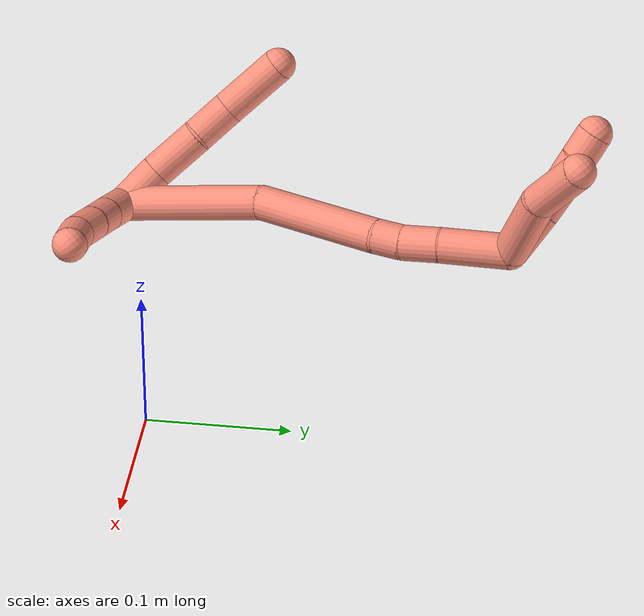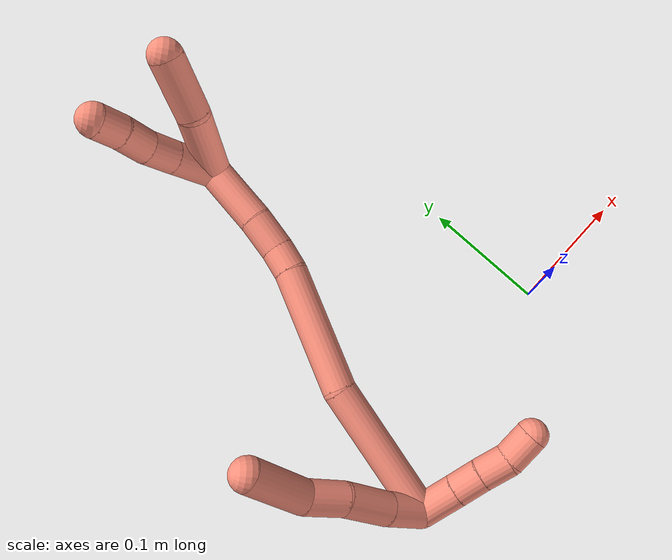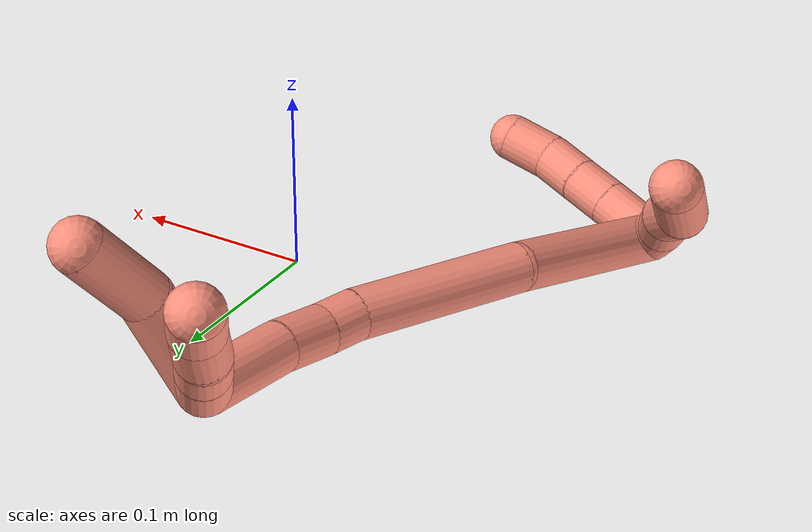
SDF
<sdf version="1.7">
 <world name="default">
  <model name="16">
   <static>0</static>
   <link name="16">
    <collision name="collision-cylinder-e_1_2_8">
     <pose>0.003369 -0.001065 0.015936 0.066722 0.207889 0.006963</pose>
     <geometry><cylinder><radius>0.0125</radius><length>0.032647</length></cylinder></geometry>
     <surface>
      <friction><ode><mu>1.16</mu><mu2>1.16</mu2><slip1>0</slip1><slip2>0</slip2></ode></friction>
      <contact><ode><kp>1e+06</kp><kd>1</kd><max_vel>0</max_vel><min_depth>0.001</min_depth></ode></contact>
     </surface>
    </collision>
    <visual name="visual-cylinder-e_1_2_8">
     <pose>0.003369 -0.001065 0.015936 0.066722 0.207889 0.006963</pose>
     <geometry><cylinder><radius>0.0125</radius><length>0.032647</length></cylinder></geometry>
     <material><ambient>1 0.576471 0.494118 1</ambient></material>
    </visual>
    <collision name="collision-cylinder-e_2_8_9">
     <pose>0.011866 -0.001526 0.050316 -0.032747 0.271062 -0.004466</pose>
     <geometry><cylinder><radius>0.0125</radius><length>0.038305</length></cylinder></geometry>
     <surface>
      <friction><ode><mu>1.16</mu><mu2>1.16</mu2><slip1>0</slip1><slip2>0</slip2></ode></friction>
      <contact><ode><kp>1e+06</kp><kd>1</kd><max_vel>0</max_vel><min_depth>0.001</min_depth></ode></contact>
     </surface>
    </collision>
    <visual name="visual-cylinder-e_2_8_9">
     <pose>0.011866 -0.001526 0.050316 -0.032747 0.271062 -0.004466</pose>
     <geometry><cylinder><radius>0.0125</radius><length>0.038305</length></cylinder></geometry>
     <material><ambient>1 0.576471 0.494118 1</ambient></material>
    </visual>
    <collision name="collision-cylinder-e_3_9_10">
     <pose>0.018435 -0.001436 0.083845 0.034065 0.095129 0.001622</pose>
     <geometry><cylinder><radius>0.0125</radius><length>0.030327</length></cylinder></geometry>
     <surface>
      <friction><ode><mu>1.16</mu><mu2>1.16</mu2><slip1>0</slip1><slip2>0</slip2></ode></friction>
      <contact><ode><kp>1e+06</kp><kd>1</kd><max_vel>0</max_vel><min_depth>0.001</min_depth></ode></contact>
     </surface>
    </collision>
    <visual name="visual-cylinder-e_3_9_10">
     <pose>0.018435 -0.001436 0.083845 0.034065 0.095129 0.001622</pose>
     <geometry><cylinder><radius>0.0125</radius><length>0.030327</length></cylinder></geometry>
     <material><ambient>1 0.576471 0.494118 1</ambient></material>
    </visual>
    <collision name="collision-cylinder-e_4_10_6">
     <pose>0.029799 -2.7e-05 0.121096 -0.086541 0.419599 -0.018438</pose>
     <geometry><cylinder><radius>0.0125</radius><length>0.048721</length></cylinder></geometry>
     <surface>
      <friction><ode><mu>1.16</mu><mu2>1.16</mu2><slip1>0</slip1><slip2>0</slip2></ode></friction>
      <contact><ode><kp>1e+06</kp><kd>1</kd><max_vel>0</max_vel><min_depth>0.001</min_depth></ode></contact>
     </surface>
    </collision>
    <visual name="visual-cylinder-e_4_10_6">
     <pose>0.029799 -2.7e-05 0.121096 -0.086541 0.419599 -0.018438</pose>
     <geometry><cylinder><radius>0.0125</radius><length>0.048721</length></cylinder></geometry>
     <material><ambient>1 0.576471 0.494118 1</ambient></material>
    </visual>
    <collision name="collision-cylinder-e_1_2_11">
     <pose>0.012022 0.002674 -0.009301 -2.86164 0.893017 -2.56915</pose>
     <geometry><cylinder><radius>0.0125</radius><length>0.030868</length></cylinder></geometry>
     <surface>
      <friction><ode><mu>1.16</mu><mu2>1.16</mu2><slip1>0</slip1><slip2>0</slip2></ode></friction>
      <contact><ode><kp>1e+06</kp><kd>1</kd><max_vel>0</max_vel><min_depth>0.001</min_depth></ode></contact>
     </surface>
    </collision>
    <visual name="visual-cylinder-e_1_2_11">
     <pose>0.012022 0.002674 -0.009301 -2.86164 0.893017 -2.56915</pose>
     <geometry><cylinder><radius>0.0125</radius><length>0.030868</length></cylinder></geometry>
     <material><ambient>1 0.576471 0.494118 1</ambient></material>
    </visual>
    <collision name="collision-cylinder-e_2_11_12">
     <pose>0.032531 0.007402 -0.025204 -2.83995 0.88714 -2.52246</pose>
     <geometry><cylinder><radius>0.0125</radius><length>0.021892</length></cylinder></geometry>
     <surface>
      <friction><ode><mu>1.16</mu><mu2>1.16</mu2><slip1>0</slip1><slip2>0</slip2></ode></friction>
      <contact><ode><kp>1e+06</kp><kd>1</kd><max_vel>0</max_vel><min_depth>0.001</min_depth></ode></contact>
     </surface>
    </collision>
    <visual name="visual-cylinder-e_2_11_12">
     <pose>0.032531 0.007402 -0.025204 -2.83995 0.88714 -2.52246</pose>
     <geometry><cylinder><radius>0.0125</radius><length>0.021892</length></cylinder></geometry>
     <material><ambient>1 0.576471 0.494118 1</ambient></material>
    </visual>
    <collision name="collision-cylinder-e_3_12_13">
     <pose>0.049567 0.011381 -0.039253 -2.88869 0.838156 -2.58561</pose>
     <geometry><cylinder><radius>0.0125</radius><length>0.023003</length></cylinder></geometry>
     <surface>
      <friction><ode><mu>1.16</mu><mu2>1.16</mu2><slip1>0</slip1><slip2>0</slip2></ode></friction>
      <contact><ode><kp>1e+06</kp><kd>1</kd><max_vel>0</max_vel><min_depth>0.001</min_depth></ode></contact>
     </surface>
    </collision>
    <visual name="visual-cylinder-e_3_12_13">
     <pose>0.049567 0.011381 -0.039253 -2.88869 0.838156 -2.58561</pose>
     <geometry><cylinder><radius>0.0125</radius><length>0.023003</length></cylinder></geometry>
     <material><ambient>1 0.576471 0.494118 1</ambient></material>
    </visual>
    <collision name="collision-cylinder-e_4_13_5">
     <pose>0.067843 0.017974 -0.052223 -2.43978 0.931503 -1.88269</pose>
     <geometry><cylinder><radius>0.0125</radius><length>0.024238</length></cylinder></geometry>
     <surface>
      <friction><ode><mu>1.16</mu><mu2>1.16</mu2><slip1>0</slip1><slip2>0</slip2></ode></friction>
      <contact><ode><kp>1e+06</kp><kd>1</kd><max_vel>0</max_vel><min_depth>0.001</min_depth></ode></contact>
     </surface>
    </collision>
    <visual name="visual-cylinder-e_4_13_5">
     <pose>0.067843 0.017974 -0.052223 -2.43978 0.931503 -1.88269</pose>
     <geometry><cylinder><radius>0.0125</radius><length>0.024238</length></cylinder></geometry>
     <material><ambient>1 0.576471 0.494118 1</ambient></material>
    </visual>
    <collision name="collision-cylinder-e_1_2_14">
     <pose>0.019588 0.036944 0.034761 -0.815828 0.368499 -0.160728</pose>
     <geometry><cylinder><radius>0.0125</radius><length>0.108754</length></cylinder></geometry>
     <surface>
      <friction><ode><mu>1.16</mu><mu2>1.16</mu2><slip1>0</slip1><slip2>0</slip2></ode></friction>
      <contact><ode><kp>1e+06</kp><kd>1</kd><max_vel>0</max_vel><min_depth>0.001</min_depth></ode></contact>
     </surface>
    </collision>
    <visual name="visual-cylinder-e_1_2_14">
     <pose>0.019588 0.036944 0.034761 -0.815828 0.368499 -0.160728</pose>
     <geometry><cylinder><radius>0.0125</radius><length>0.108754</length></cylinder></geometry>
     <material><ambient>1 0.576471 0.494118 1</ambient></material>
    </visual>
    <collision name="collision-cylinder-e_2_14_15">
     <pose>0.055589 0.113587 0.089548 -1.1036 0.353633 -0.219109</pose>
     <geometry><cylinder><radius>0.0125</radius><length>0.094793</length></cylinder></geometry>
     <surface>
      <friction><ode><mu>1.16</mu><mu2>1.16</mu2><slip1>0</slip1><slip2>0</slip2></ode></friction>
      <contact><ode><kp>1e+06</kp><kd>1</kd><max_vel>0</max_vel><min_depth>0.001</min_depth></ode></contact>
     </surface>
    </collision>
    <visual name="visual-cylinder-e_2_14_15">
     <pose>0.055589 0.113587 0.089548 -1.1036 0.353633 -0.219109</pose>
     <geometry><cylinder><radius>0.0125</radius><length>0.094793</length></cylinder></geometry>
     <material><ambient>1 0.576471 0.494118 1</ambient></material>
    </visual>
    <collision name="collision-cylinder-e_3_15_16">
     <pose>0.074211 0.161584 0.114765 -1.01176 0.221908 -0.123279</pose>
     <geometry><cylinder><radius>0.0125</radius><length>0.02007</length></cylinder></geometry>
     <surface>
      <friction><ode><mu>1.16</mu><mu2>1.16</mu2><slip1>0</slip1><slip2>0</slip2></ode></friction>
      <contact><ode><kp>1e+06</kp><kd>1</kd><max_vel>0</max_vel><min_depth>0.001</min_depth></ode></contact>
     </surface>
    </collision>
    <visual name="visual-cylinder-e_3_15_16">
     <pose>0.074211 0.161584 0.114765 -1.01176 0.221908 -0.123279</pose>
     <geometry><cylinder><radius>0.0125</radius><length>0.02007</length></cylinder></geometry>
     <material><ambient>1 0.576471 0.494118 1</ambient></material>
    </visual>
    <collision name="collision-cylinder-e_4_16_17">
     <pose>0.080067 0.179869 0.128691 -0.852229 0.268314 -0.122378</pose>
     <geometry><cylinder><radius>0.0125</radius><length>0.027517</length></cylinder></geometry>
     <surface>
      <friction><ode><mu>1.16</mu><mu2>1.16</mu2><slip1>0</slip1><slip2>0</slip2></ode></friction>
      <contact><ode><kp>1e+06</kp><kd>1</kd><max_vel>0</max_vel><min_depth>0.001</min_depth></ode></contact>
     </surface>
    </collision>
    <visual name="visual-cylinder-e_4_16_17">
     <pose>0.080067 0.179869 0.128691 -0.852229 0.268314 -0.122378</pose>
     <geometry><cylinder><radius>0.0125</radius><length>0.027517</length></cylinder></geometry>
     <material><ambient>1 0.576471 0.494118 1</ambient></material>
    </visual>
    <collision name="collision-cylinder-e_5_17_1">
     <pose>0.087699 0.207914 0.153392 -0.846749 0.16382 -0.073954</pose>
     <geometry><cylinder><radius>0.0125</radius><length>0.048866</length></cylinder></geometry>
     <surface>
      <friction><ode><mu>1.16</mu><mu2>1.16</mu2><slip1>0</slip1><slip2>0</slip2></ode></friction>
      <contact><ode><kp>1e+06</kp><kd>1</kd><max_vel>0</max_vel><min_depth>0.001</min_depth></ode></contact>
     </surface>
    </collision>
    <visual name="visual-cylinder-e_5_17_1">
     <pose>0.087699 0.207914 0.153392 -0.846749 0.16382 -0.073954</pose>
     <geometry><cylinder><radius>0.0125</radius><length>0.048866</length></cylinder></geometry>
     <material><ambient>1 0.576471 0.494118 1</ambient></material>
    </visual>
    <collision name="collision-cylinder-e_1_1_18">
     <pose>0.096743 0.223177 0.185677 0.169661 0.296574 0.025404</pose>
     <geometry><cylinder><radius>0.0125</radius><length>0.03462</length></cylinder></geometry>
     <surface>
      <friction><ode><mu>1.16</mu><mu2>1.16</mu2><slip1>0</slip1><slip2>0</slip2></ode></friction>
      <contact><ode><kp>1e+06</kp><kd>1</kd><max_vel>0</max_vel><min_depth>0.001</min_depth></ode></contact>
     </surface>
    </collision>
    <visual name="visual-cylinder-e_1_1_18">
     <pose>0.096743 0.223177 0.185677 0.169661 0.296574 0.025404</pose>
     <geometry><cylinder><radius>0.0125</radius><length>0.03462</length></cylinder></geometry>
     <material><ambient>1 0.576471 0.494118 1</ambient></material>
    </visual>
    <collision name="collision-cylinder-e_2_18_19">
     <pose>0.105598 0.218191 0.212283 0.209702 0.346332 0.036812</pose>
     <geometry><cylinder><radius>0.0125</radius><length>0.02237</length></cylinder></geometry>
     <surface>
      <friction><ode><mu>1.16</mu><mu2>1.16</mu2><slip1>0</slip1><slip2>0</slip2></ode></friction>
      <contact><ode><kp>1e+06</kp><kd>1</kd><max_vel>0</max_vel><min_depth>0.001</min_depth></ode></contact>
     </surface>
    </collision>
    <visual name="visual-cylinder-e_2_18_19">
     <pose>0.105598 0.218191 0.212283 0.209702 0.346332 0.036812</pose>
     <geometry><cylinder><radius>0.0125</radius><length>0.02237</length></cylinder></geometry>
     <material><ambient>1 0.576471 0.494118 1</ambient></material>
    </visual>
    <collision name="collision-cylinder-e_3_19_20">
     <pose>0.115256 0.213758 0.232179 0.229473 0.536122 0.063287</pose>
     <geometry><cylinder><radius>0.0125</radius><length>0.022949</length></cylinder></geometry>
     <surface>
      <friction><ode><mu>1.16</mu><mu2>1.16</mu2><slip1>0</slip1><slip2>0</slip2></ode></friction>
      <contact><ode><kp>1e+06</kp><kd>1</kd><max_vel>0</max_vel><min_depth>0.001</min_depth></ode></contact>
     </surface>
    </collision>
    <visual name="visual-cylinder-e_3_19_20">
     <pose>0.115256 0.213758 0.232179 0.229473 0.536122 0.063287</pose>
     <geometry><cylinder><radius>0.0125</radius><length>0.022949</length></cylinder></geometry>
     <material><ambient>1 0.576471 0.494118 1</ambient></material>
    </visual>
    <collision name="collision-cylinder-e_4_20_4">
     <pose>0.125254 0.209335 0.25066 0.240798 0.42511 0.052208</pose>
     <geometry><cylinder><radius>0.0125</radius><length>0.020062</length></cylinder></geometry>
     <surface>
      <friction><ode><mu>1.16</mu><mu2>1.16</mu2><slip1>0</slip1><slip2>0</slip2></ode></friction>
      <contact><ode><kp>1e+06</kp><kd>1</kd><max_vel>0</max_vel><min_depth>0.001</min_depth></ode></contact>
     </surface>
    </collision>
    <visual name="visual-cylinder-e_4_20_4">
     <pose>0.125254 0.209335 0.25066 0.240798 0.42511 0.052208</pose>
     <geometry><cylinder><radius>0.0125</radius><length>0.020062</length></cylinder></geometry>
     <material><ambient>1 0.576471 0.494118 1</ambient></material>
    </visual>
    <collision name="collision-cylinder-e_1_1_21">
     <pose>0.116165 0.224146 0.182978 0.133256 1.05935 0.078095</pose>
     <geometry><cylinder><radius>0.0125</radius><length>0.056145</length></cylinder></geometry>
     <surface>
      <friction><ode><mu>1.16</mu><mu2>1.16</mu2><slip1>0</slip1><slip2>0</slip2></ode></friction>
      <contact><ode><kp>1e+06</kp><kd>1</kd><max_vel>0</max_vel><min_depth>0.001</min_depth></ode></contact>
     </surface>
    </collision>
    <visual name="visual-cylinder-e_1_1_21">
     <pose>0.116165 0.224146 0.182978 0.133256 1.05935 0.078095</pose>
     <geometry><cylinder><radius>0.0125</radius><length>0.056145</length></cylinder></geometry>
     <material><ambient>1 0.576471 0.494118 1</ambient></material>
    </visual>
    <collision name="collision-cylinder-e_2_21_3">
     <pose>0.157732 0.226725 0.209613 -0.326279 0.893506 -0.157382</pose>
     <geometry><cylinder><radius>0.0125</radius><length>0.043855</length></cylinder></geometry>
     <surface>
      <friction><ode><mu>1.16</mu><mu2>1.16</mu2><slip1>0</slip1><slip2>0</slip2></ode></friction>
      <contact><ode><kp>1e+06</kp><kd>1</kd><max_vel>0</max_vel><min_depth>0.001</min_depth></ode></contact>
     </surface>
    </collision>
    <visual name="visual-cylinder-e_2_21_3">
     <pose>0.157732 0.226725 0.209613 -0.326279 0.893506 -0.157382</pose>
     <geometry><cylinder><radius>0.0125</radius><length>0.043855</length></cylinder></geometry>
     <material><ambient>1 0.576471 0.494118 1</ambient></material>
    </visual>
    <collision name="collision-sphere-3">
     <pose>0.17482 0.23113 0.222629 0 -0 0</pose>
     <geometry><sphere><radius>0.0125</radius></sphere></geometry>
     <surface>
      <friction><ode><mu>1.16</mu><mu2>1.16</mu2><slip1>0</slip1><slip2>0</slip2></ode></friction>
      <contact><ode><kp>1e+06</kp><kd>1</kd><max_vel>0</max_vel><min_depth>0.001</min_depth></ode></contact>
     </surface>
    </collision>
    <visual name="visual-sphere-3">
     <pose>0.17482 0.23113 0.222629 0 -0 0</pose>
     <geometry><sphere><radius>0.0125</radius></sphere></geometry>
     <material><ambient>1 0.576471 0.494118 1</ambient></material>
    </visual>
    <collision name="collision-sphere-21">
     <pose>0.140645 0.222321 0.196596 0 -0 0</pose>
     <geometry><sphere><radius>0.0125</radius></sphere></geometry>
     <surface>
      <friction><ode><mu>1.16</mu><mu2>1.16</mu2><slip1>0</slip1><slip2>0</slip2></ode></friction>
      <contact><ode><kp>1e+06</kp><kd>1</kd><max_vel>0</max_vel><min_depth>0.001</min_depth></ode></contact>
     </surface>
    </collision>
    <visual name="visual-sphere-21">
     <pose>0.140645 0.222321 0.196596 0 -0 0</pose>
     <geometry><sphere><radius>0.0125</radius></sphere></geometry>
     <material><ambient>1 0.576471 0.494118 1</ambient></material>
    </visual>
    <collision name="collision-sphere-4">
     <pose>0.129391 0.207155 0.259534 0 -0 0</pose>
     <geometry><sphere><radius>0.0125</radius></sphere></geometry>
     <surface>
      <friction><ode><mu>1.16</mu><mu2>1.16</mu2><slip1>0</slip1><slip2>0</slip2></ode></friction>
      <contact><ode><kp>1e+06</kp><kd>1</kd><max_vel>0</max_vel><min_depth>0.001</min_depth></ode></contact>
     </surface>
    </collision>
    <visual name="visual-sphere-4">
     <pose>0.129391 0.207155 0.259534 0 -0 0</pose>
     <geometry><sphere><radius>0.0125</radius></sphere></geometry>
     <material><ambient>1 0.576471 0.494118 1</ambient></material>
    </visual>
    <collision name="collision-sphere-20">
     <pose>0.121117 0.211514 0.241785 0 -0 0</pose>
     <geometry><sphere><radius>0.0125</radius></sphere></geometry>
     <surface>
      <friction><ode><mu>1.16</mu><mu2>1.16</mu2><slip1>0</slip1><slip2>0</slip2></ode></friction>
      <contact><ode><kp>1e+06</kp><kd>1</kd><max_vel>0</max_vel><min_depth>0.001</min_depth></ode></contact>
     </surface>
    </collision>
    <visual name="visual-sphere-20">
     <pose>0.121117 0.211514 0.241785 0 -0 0</pose>
     <geometry><sphere><radius>0.0125</radius></sphere></geometry>
     <material><ambient>1 0.576471 0.494118 1</ambient></material>
    </visual>
    <collision name="collision-sphere-11">
     <pose>0.024045 0.005348 -0.018602 0 -0 0</pose>
     <geometry><sphere><radius>0.0125</radius></sphere></geometry>
     <surface>
      <friction><ode><mu>1.16</mu><mu2>1.16</mu2><slip1>0</slip1><slip2>0</slip2></ode></friction>
      <contact><ode><kp>1e+06</kp><kd>1</kd><max_vel>0</max_vel><min_depth>0.001</min_depth></ode></contact>
     </surface>
    </collision>
    <visual name="visual-sphere-11">
     <pose>0.024045 0.005348 -0.018602 0 -0 0</pose>
     <geometry><sphere><radius>0.0125</radius></sphere></geometry>
     <material><ambient>1 0.576471 0.494118 1</ambient></material>
    </visual>
    <collision name="collision-sphere-6">
     <pose>0.039724 0.001896 0.14326 0 -0 0</pose>
     <geometry><sphere><radius>0.0125</radius></sphere></geometry>
     <surface>
      <friction><ode><mu>1.16</mu><mu2>1.16</mu2><slip1>0</slip1><slip2>0</slip2></ode></friction>
      <contact><ode><kp>1e+06</kp><kd>1</kd><max_vel>0</max_vel><min_depth>0.001</min_depth></ode></contact>
     </surface>
    </collision>
    <visual name="visual-sphere-6">
     <pose>0.039724 0.001896 0.14326 0 -0 0</pose>
     <geometry><sphere><radius>0.0125</radius></sphere></geometry>
     <material><ambient>1 0.576471 0.494118 1</ambient></material>
    </visual>
    <collision name="collision-sphere-10">
     <pose>0.019875 -0.00195 0.098932 0 -0 0</pose>
     <geometry><sphere><radius>0.0125</radius></sphere></geometry>
     <surface>
      <friction><ode><mu>1.16</mu><mu2>1.16</mu2><slip1>0</slip1><slip2>0</slip2></ode></friction>
      <contact><ode><kp>1e+06</kp><kd>1</kd><max_vel>0</max_vel><min_depth>0.001</min_depth></ode></contact>
     </surface>
    </collision>
    <visual name="visual-sphere-10">
     <pose>0.019875 -0.00195 0.098932 0 -0 0</pose>
     <geometry><sphere><radius>0.0125</radius></sphere></geometry>
     <material><ambient>1 0.576471 0.494118 1</ambient></material>
    </visual>
    <collision name="collision-sphere-9">
     <pose>0.016994 -0.000921 0.068759 0 -0 0</pose>
     <geometry><sphere><radius>0.0125</radius></sphere></geometry>
     <surface>
      <friction><ode><mu>1.16</mu><mu2>1.16</mu2><slip1>0</slip1><slip2>0</slip2></ode></friction>
      <contact><ode><kp>1e+06</kp><kd>1</kd><max_vel>0</max_vel><min_depth>0.001</min_depth></ode></contact>
     </surface>
    </collision>
    <visual name="visual-sphere-9">
     <pose>0.016994 -0.000921 0.068759 0 -0 0</pose>
     <geometry><sphere><radius>0.0125</radius></sphere></geometry>
     <material><ambient>1 0.576471 0.494118 1</ambient></material>
    </visual>
    <collision name="collision-sphere-2">
     <geometry><sphere><radius>0.0125</radius></sphere></geometry>
     <surface>
      <friction><ode><mu>1.16</mu><mu2>1.16</mu2><slip1>0</slip1><slip2>0</slip2></ode></friction>
      <contact><ode><kp>1e+06</kp><kd>1</kd><max_vel>0</max_vel><min_depth>0.001</min_depth></ode></contact>
     </surface>
    </collision>
    <visual name="visual-sphere-2">
     <geometry><sphere><radius>0.0125</radius></sphere></geometry>
     <material><ambient>1 0.576471 0.494118 1</ambient></material>
    </visual>
    <collision name="collision-sphere-19">
     <pose>0.109395 0.216001 0.222574 0 -0 0</pose>
     <geometry><sphere><radius>0.0125</radius></sphere></geometry>
     <surface>
      <friction><ode><mu>1.16</mu><mu2>1.16</mu2><slip1>0</slip1><slip2>0</slip2></ode></friction>
      <contact><ode><kp>1e+06</kp><kd>1</kd><max_vel>0</max_vel><min_depth>0.001</min_depth></ode></contact>
     </surface>
    </collision>
    <visual name="visual-sphere-19">
     <pose>0.109395 0.216001 0.222574 0 -0 0</pose>
     <geometry><sphere><radius>0.0125</radius></sphere></geometry>
     <material><ambient>1 0.576471 0.494118 1</ambient></material>
    </visual>
    <collision name="collision-sphere-8">
     <pose>0.006738 -0.00213 0.031873 0 -0 0</pose>
     <geometry><sphere><radius>0.0125</radius></sphere></geometry>
     <surface>
      <friction><ode><mu>1.16</mu><mu2>1.16</mu2><slip1>0</slip1><slip2>0</slip2></ode></friction>
      <contact><ode><kp>1e+06</kp><kd>1</kd><max_vel>0</max_vel><min_depth>0.001</min_depth></ode></contact>
     </surface>
    </collision>
    <visual name="visual-sphere-8">
     <pose>0.006738 -0.00213 0.031873 0 -0 0</pose>
     <geometry><sphere><radius>0.0125</radius></sphere></geometry>
     <material><ambient>1 0.576471 0.494118 1</ambient></material>
    </visual>
    <collision name="collision-sphere-12">
     <pose>0.041017 0.009456 -0.031806 0 -0 0</pose>
     <geometry><sphere><radius>0.0125</radius></sphere></geometry>
     <surface>
      <friction><ode><mu>1.16</mu><mu2>1.16</mu2><slip1>0</slip1><slip2>0</slip2></ode></friction>
      <contact><ode><kp>1e+06</kp><kd>1</kd><max_vel>0</max_vel><min_depth>0.001</min_depth></ode></contact>
     </surface>
    </collision>
    <visual name="visual-sphere-12">
     <pose>0.041017 0.009456 -0.031806 0 -0 0</pose>
     <geometry><sphere><radius>0.0125</radius></sphere></geometry>
     <material><ambient>1 0.576471 0.494118 1</ambient></material>
    </visual>
    <collision name="collision-sphere-13">
     <pose>0.058117 0.013306 -0.046701 0 -0 0</pose>
     <geometry><sphere><radius>0.0125</radius></sphere></geometry>
     <surface>
      <friction><ode><mu>1.16</mu><mu2>1.16</mu2><slip1>0</slip1><slip2>0</slip2></ode></friction>
      <contact><ode><kp>1e+06</kp><kd>1</kd><max_vel>0</max_vel><min_depth>0.001</min_depth></ode></contact>
     </surface>
    </collision>
    <visual name="visual-sphere-13">
     <pose>0.058117 0.013306 -0.046701 0 -0 0</pose>
     <geometry><sphere><radius>0.0125</radius></sphere></geometry>
     <material><ambient>1 0.576471 0.494118 1</ambient></material>
    </visual>
    <collision name="collision-sphere-5">
     <pose>0.077569 0.022642 -0.057745 0 -0 0</pose>
     <geometry><sphere><radius>0.0125</radius></sphere></geometry>
     <surface>
      <friction><ode><mu>1.16</mu><mu2>1.16</mu2><slip1>0</slip1><slip2>0</slip2></ode></friction>
      <contact><ode><kp>1e+06</kp><kd>1</kd><max_vel>0</max_vel><min_depth>0.001</min_depth></ode></contact>
     </surface>
    </collision>
    <visual name="visual-sphere-5">
     <pose>0.077569 0.022642 -0.057745 0 -0 0</pose>
     <geometry><sphere><radius>0.0125</radius></sphere></geometry>
     <material><ambient>1 0.576471 0.494118 1</ambient></material>
    </visual>
    <collision name="collision-sphere-14">
     <pose>0.039175 0.073888 0.069523 0 -0 0</pose>
     <geometry><sphere><radius>0.0125</radius></sphere></geometry>
     <surface>
      <friction><ode><mu>1.16</mu><mu2>1.16</mu2><slip1>0</slip1><slip2>0</slip2></ode></friction>
      <contact><ode><kp>1e+06</kp><kd>1</kd><max_vel>0</max_vel><min_depth>0.001</min_depth></ode></contact>
     </surface>
    </collision>
    <visual name="visual-sphere-14">
     <pose>0.039175 0.073888 0.069523 0 -0 0</pose>
     <geometry><sphere><radius>0.0125</radius></sphere></geometry>
     <material><ambient>1 0.576471 0.494118 1</ambient></material>
    </visual>
    <collision name="collision-sphere-15">
     <pose>0.072003 0.153285 0.109574 0 -0 0</pose>
     <geometry><sphere><radius>0.0125</radius></sphere></geometry>
     <surface>
      <friction><ode><mu>1.16</mu><mu2>1.16</mu2><slip1>0</slip1><slip2>0</slip2></ode></friction>
      <contact><ode><kp>1e+06</kp><kd>1</kd><max_vel>0</max_vel><min_depth>0.001</min_depth></ode></contact>
     </surface>
    </collision>
    <visual name="visual-sphere-15">
     <pose>0.072003 0.153285 0.109574 0 -0 0</pose>
     <geometry><sphere><radius>0.0125</radius></sphere></geometry>
     <material><ambient>1 0.576471 0.494118 1</ambient></material>
    </visual>
    <collision name="collision-sphere-16">
     <pose>0.07642 0.169883 0.119957 0 -0 0</pose>
     <geometry><sphere><radius>0.0125</radius></sphere></geometry>
     <surface>
      <friction><ode><mu>1.16</mu><mu2>1.16</mu2><slip1>0</slip1><slip2>0</slip2></ode></friction>
      <contact><ode><kp>1e+06</kp><kd>1</kd><max_vel>0</max_vel><min_depth>0.001</min_depth></ode></contact>
     </surface>
    </collision>
    <visual name="visual-sphere-16">
     <pose>0.07642 0.169883 0.119957 0 -0 0</pose>
     <geometry><sphere><radius>0.0125</radius></sphere></geometry>
     <material><ambient>1 0.576471 0.494118 1</ambient></material>
    </visual>
    <collision name="collision-sphere-17">
     <pose>0.083715 0.189855 0.137424 0 -0 0</pose>
     <geometry><sphere><radius>0.0125</radius></sphere></geometry>
     <surface>
      <friction><ode><mu>1.16</mu><mu2>1.16</mu2><slip1>0</slip1><slip2>0</slip2></ode></friction>
      <contact><ode><kp>1e+06</kp><kd>1</kd><max_vel>0</max_vel><min_depth>0.001</min_depth></ode></contact>
     </surface>
    </collision>
    <visual name="visual-sphere-17">
     <pose>0.083715 0.189855 0.137424 0 -0 0</pose>
     <geometry><sphere><radius>0.0125</radius></sphere></geometry>
     <material><ambient>1 0.576471 0.494118 1</ambient></material>
    </visual>
    <collision name="collision-sphere-1">
     <pose>0.091684 0.225972 0.16936 0 -0 0</pose>
     <geometry><sphere><radius>0.0125</radius></sphere></geometry>
     <surface>
      <friction><ode><mu>1.16</mu><mu2>1.16</mu2><slip1>0</slip1><slip2>0</slip2></ode></friction>
      <contact><ode><kp>1e+06</kp><kd>1</kd><max_vel>0</max_vel><min_depth>0.001</min_depth></ode></contact>
     </surface>
    </collision>
    <visual name="visual-sphere-1">
     <pose>0.091684 0.225972 0.16936 0 -0 0</pose>
     <geometry><sphere><radius>0.0125</radius></sphere></geometry>
     <material><ambient>1 0.576471 0.494118 1</ambient></material>
    </visual>
    <collision name="collision-sphere-18">
     <pose>0.101802 0.220382 0.201993 0 -0 0</pose>
     <geometry><sphere><radius>0.0125</radius></sphere></geometry>
     <surface>
      <friction><ode><mu>1.16</mu><mu2>1.16</mu2><slip1>0</slip1><slip2>0</slip2></ode></friction>
      <contact><ode><kp>1e+06</kp><kd>1</kd><max_vel>0</max_vel><min_depth>0.001</min_depth></ode></contact>
     </surface>
    </collision>
    <visual name="visual-sphere-18">
     <pose>0.101802 0.220382 0.201993 0 -0 0</pose>
     <geometry><sphere><radius>0.0125</radius></sphere></geometry>
     <material><ambient>1 0.576471 0.494118 1</ambient></material>
    </visual>
    <inertial>
     <pose>0.061506 0.104242 0.099322 0 -0 0</pose>
     <mass>0.75</mass>
     <inertia>
      <ixx>0.000218</ixx>
      <ixy>0</ixy>
      <ixz>0</ixz>
      <iyy>0.000179</iyy>
      <iyz>0</iyz>
      <izz>-0.00023</izz>
     </inertia>
    </inertial>
   </link>
   <pose>-0.191499 -0.047034 0.047954 -0.838312 -0.885056 0.071508</pose>
  </model>
 </world>
</sdf>
